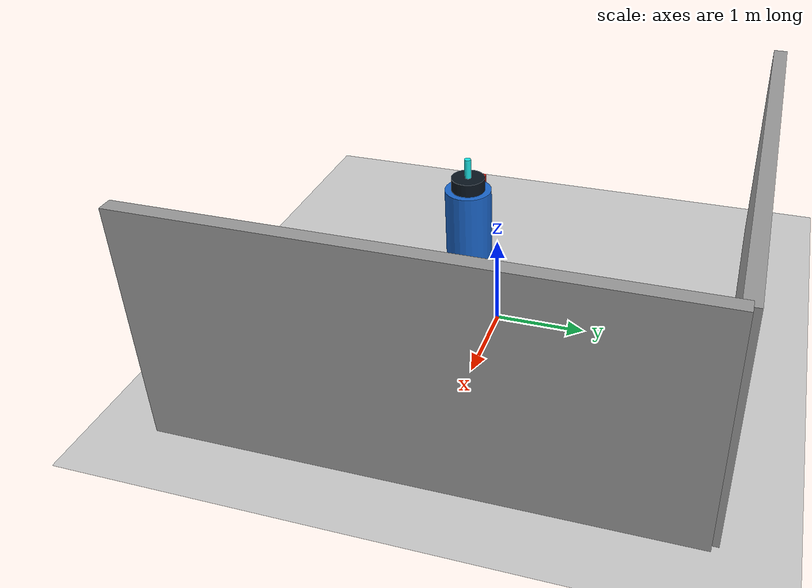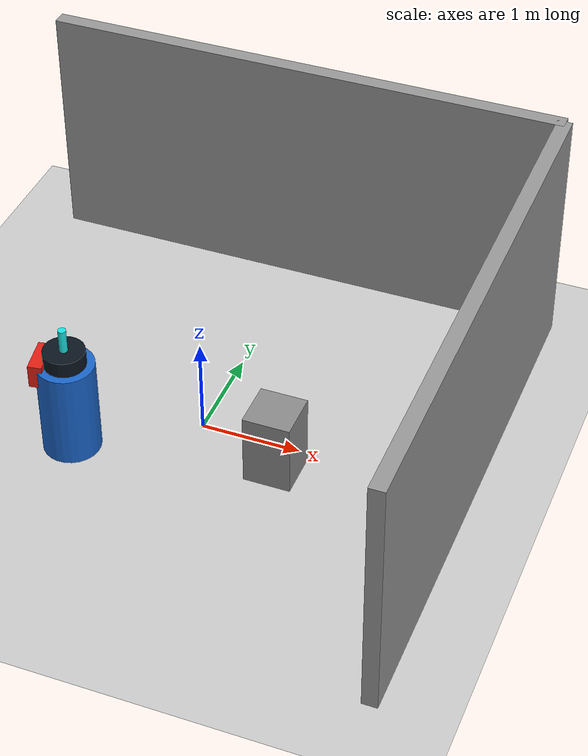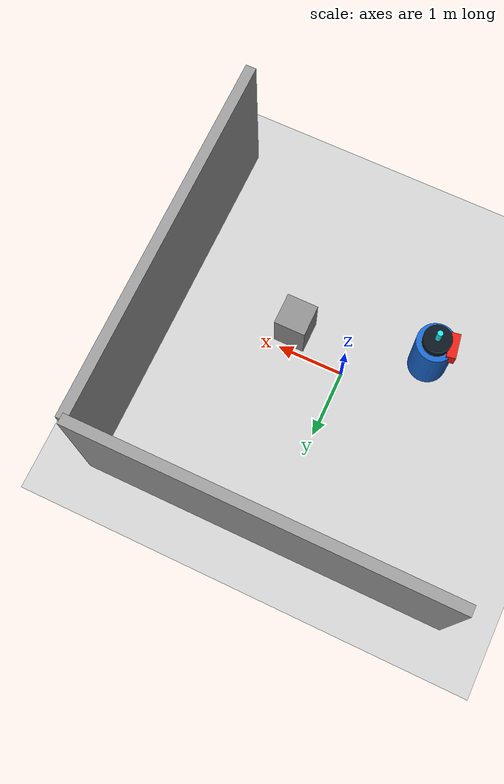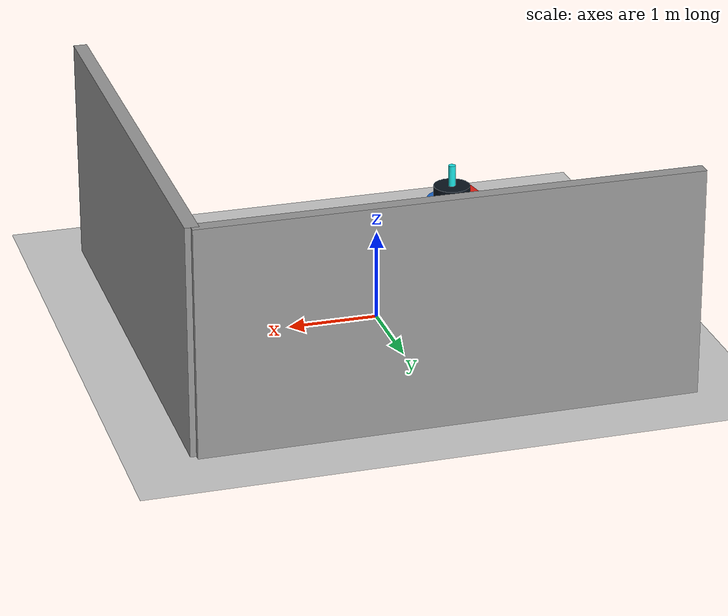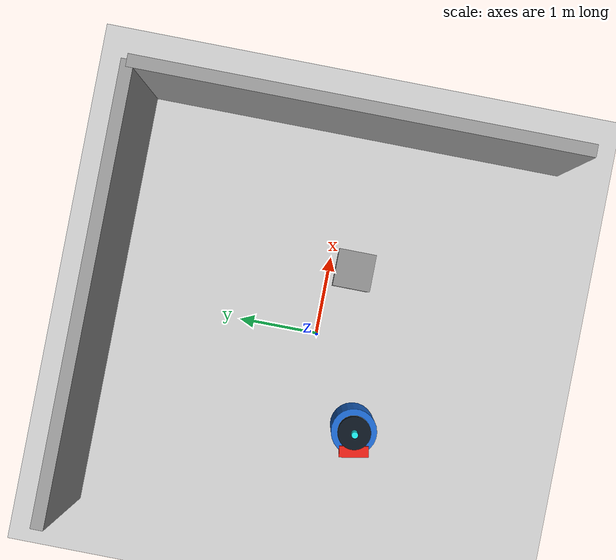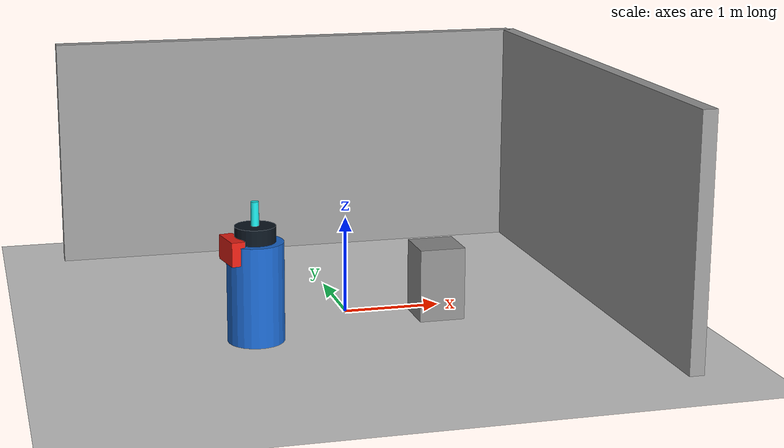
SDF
<sdf version="1.7">
 <world name="default">
  <plugin name="socnav_plugin" filename="libSocNavPlugin.so">
   <robot_name>robot</robot_name>
   <trajectory_file>/home/hunav_gz_classic_ws/SocNav3_trajectories/src6/000003892.json</trajectory_file>
   <human_slots>1</human_slots>
   <goal_angle_mesh>
    <angle_threshold>1.20538969708</angle_threshold>
    <uri>/home/hunav_gz_classic_ws/src/socnav_gazebo_reproducer/meshes/000003892_goal_angle_00.stl</uri>
   </goal_angle_mesh>
  </plugin>
  <light name="sun" type="directional">
   <pose>0 0 10 0 -0 0</pose>
   <diffuse>0.8 0.8 0.8 1</diffuse>
   <specular>0.2 0.2 0.2 1</specular>
   <attenuation>
    <range>1000</range>
    <constant>0.9</constant>
    <linear>0.01</linear>
    <quadratic>0.001</quadratic>
   </attenuation>
   <direction>-0.5 0.1 -0.9</direction>
   <spot><inner_angle>0</inner_angle><outer_angle>0</outer_angle><falloff>0</falloff></spot>
  </light>
  <model name="ground_plane">
   <static>1</static>
   <link name="link">
    <collision name="collision">
     <geometry><plane><normal>0 0 1</normal><size>100 100</size></plane></geometry>
     <surface><friction><ode><mu>100</mu><mu2>50</mu2></ode></friction></surface>
    </collision>
    <visual name="visual">
     <cast_shadows>0</cast_shadows>
     <geometry><plane><normal>0 0 1</normal><size>100 100</size></plane></geometry>
     <material>
      <script><uri>file://media/materials/scripts/kitchen.material</uri><name>Kitchen/CounterTop_H</name></script>
     </material>
    </visual>
   </link>
  </model>
  <gravity>0 0 -9.8</gravity>
  <magnetic_field>6e-06 2.3e-05 -4.2e-05</magnetic_field>
  <atmosphere type="adiabatic"/>
  <physics type="ode">
   <max_step_size>0.001</max_step_size>
   <real_time_factor>1</real_time_factor>
   <real_time_update_rate>1000</real_time_update_rate>
  </physics>
  <scene><ambient>0.4 0.4 0.4 1</ambient><background>0.7 0.7 0.7 1</background><shadows>1</shadows></scene>
  <audio><device>default</device></audio>
  <spherical_coordinates>
   <surface_model>EARTH_WGS84</surface_model>
   <latitude_deg>0</latitude_deg>
   <longitude_deg>0</longitude_deg>
   <elevation>0</elevation>
   <heading_deg>0</heading_deg>
  </spherical_coordinates>
  <model name="robot">
   <pose>-1.0688221880888893 -0.6775034740592694 0.5 0 0 -2.967759789251444</pose>
   <link name="link">
    <collision name="collision">
     <geometry><cylinder><radius>0.28316853430128724</radius><length>1.0</length></cylinder></geometry>
    </collision>
    <visual name="visual">
     <geometry><cylinder><radius>0.28316853430128724</radius><length>1.0</length></cylinder></geometry>
     <material><ambient>0.1 0.4 0.8 1</ambient><diffuse>0.1 0.4 0.8 1</diffuse></material>
    </visual>
    <visual name="robot_top">
     <pose>0 0 0.58 0 0 0</pose>
     <geometry><cylinder><radius>0.20388134469692681</radius><length>0.16</length></cylinder></geometry>
     <material><ambient>0.04 0.08 0.12 1</ambient><diffuse>0.04 0.08 0.12 1</diffuse></material>
    </visual>
    <visual name="robot_front">
     <pose>0.23786156881308126 0 0.44 0 0 0</pose>
     <geometry><box><size>0.13592089646461789 0.3624557239056477 0.24</size></box></geometry>
     <material><ambient>0.9 0.12 0.08 1</ambient><diffuse>0.9 0.12 0.08 1</diffuse></material>
    </visual>
    <visual name="robot_sensor">
     <pose>0 0 0.78 0 0 0</pose>
     <geometry><cylinder><radius>0.039643594802180215</radius><length>0.24</length></cylinder></geometry>
     <material><ambient>0.1 0.9 0.9 1</ambient><diffuse>0.1 0.9 0.9 1</diffuse></material>
    </visual>
   </link>
  </model>
  <model name="static_object_1">
   <static>true</static>
   <pose>0.8825322495763475 -0.31455407215038633 0.375 0 0 0</pose>
   <link name="link">
    <collision name="collision">
     <geometry><box><size>0.468462775724682 0.468462775724682 0.75</size></box></geometry>
    </collision>
    <visual name="visual">
     <geometry><box><size>0.468462775724682 0.468462775724682 0.75</size></box></geometry>
     <material><ambient>0.55 0.55 0.55 1</ambient><diffuse>0.55 0.55 0.55 1</diffuse></material>
    </visual>
   </link>
  </model>
  <model name="simple_world_test">
   <link name="Wall_0">
    <collision name="Wall_0_Collision">
     <geometry><box><size>5.359152513504434 0.15 2.5</size></box></geometry>
     <pose>0 0 1.25 0 -0 0</pose>
    </collision>
    <visual name="Wall_0_Visual">
     <pose>0 0 1.25 0 -0 0</pose>
     <geometry><box><size>5.359152513504434 0.15 2.5</size></box></geometry>
     <material>
      <script><uri>file://media/materials/scripts/gazebo.material</uri><name>Gazebo/Grey</name></script>
      <ambient>1 1 1 1</ambient>
     </material>
     <meta><layer>0</layer></meta>
    </visual>
    <pose>2.669576256752217 0.0 0 0 -0 -1.5707963267948966</pose>
   </link>
   <link name="Wall_1">
    <collision name="Wall_1_Collision">
     <geometry><box><size>5.359152513504434 0.15 2.5</size></box></geometry>
     <pose>0 0 1.25 0 -0 0</pose>
    </collision>
    <visual name="Wall_1_Visual">
     <pose>0 0 1.25 0 -0 0</pose>
     <geometry><box><size>5.359152513504434 0.15 2.5</size></box></geometry>
     <material>
      <script><uri>file://media/materials/scripts/gazebo.material</uri><name>Gazebo/Grey</name></script>
      <ambient>1 1 1 1</ambient>
     </material>
     <meta><layer>0</layer></meta>
    </visual>
    <pose>0.0 2.669576256752217 0 0 -0 0.0</pose>
   </link>
   <static>1</static>
  </model>
 </world>
</sdf>
